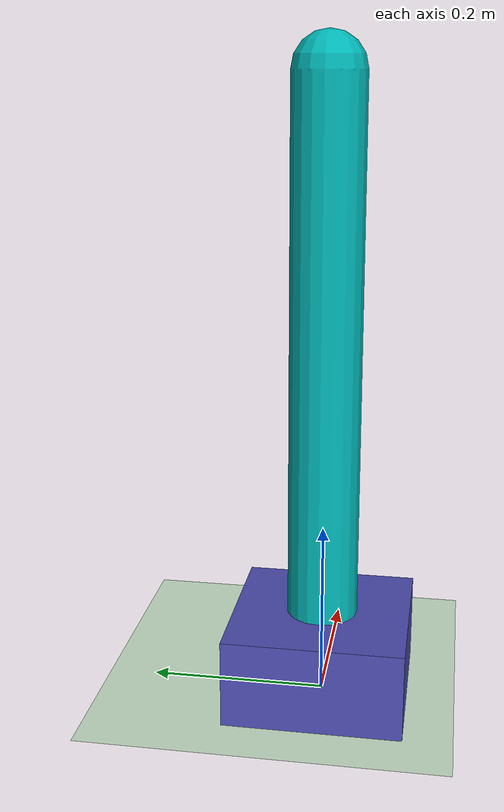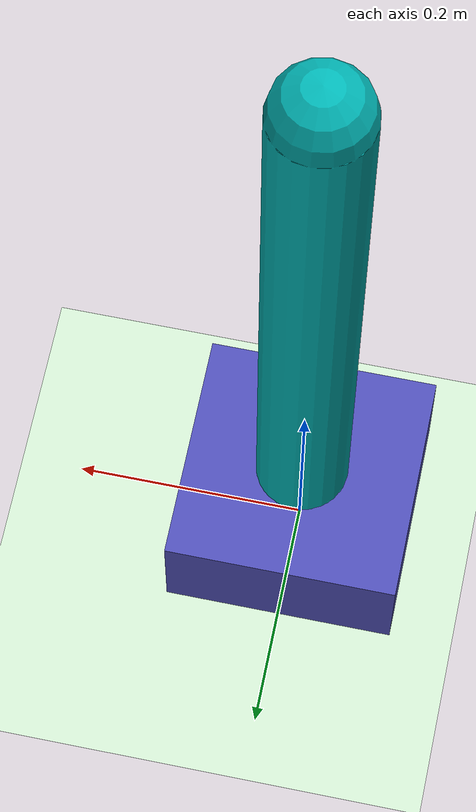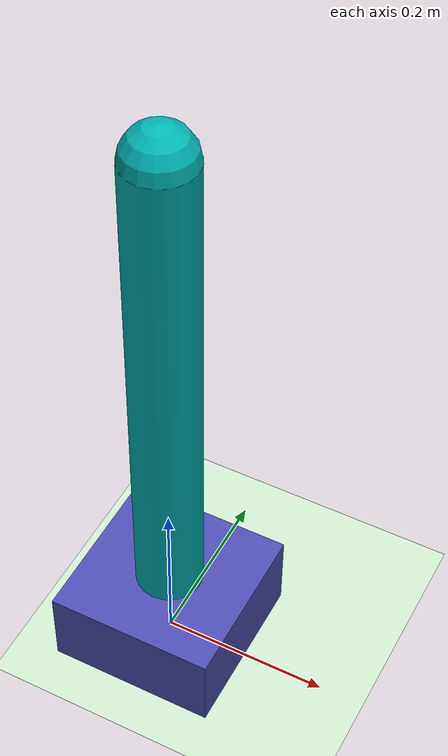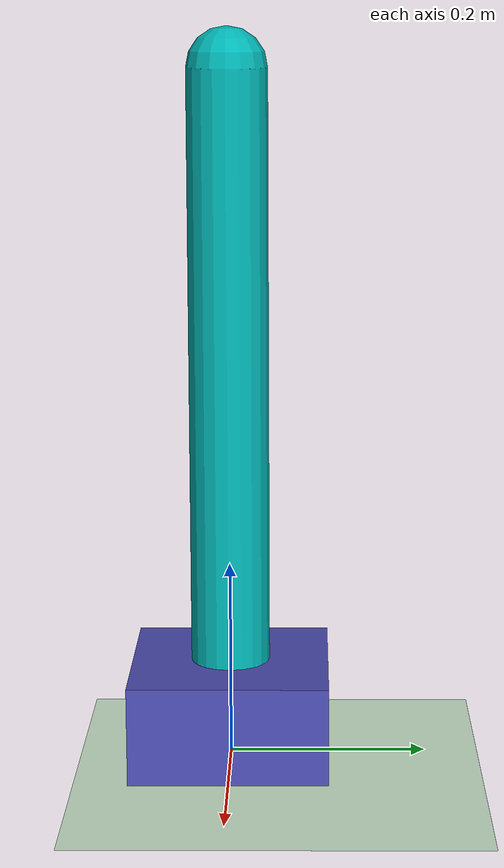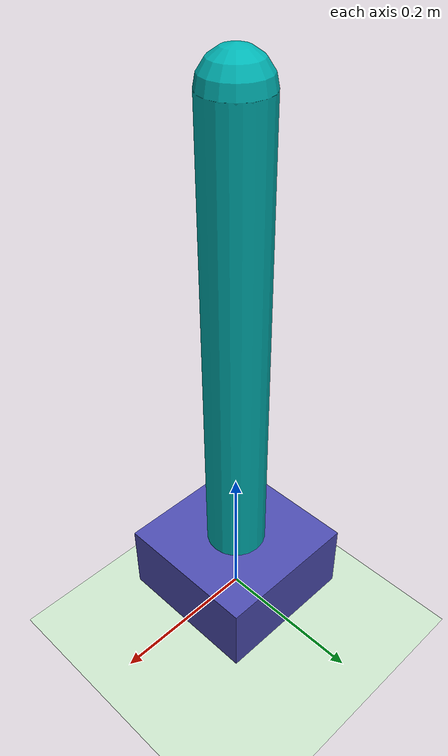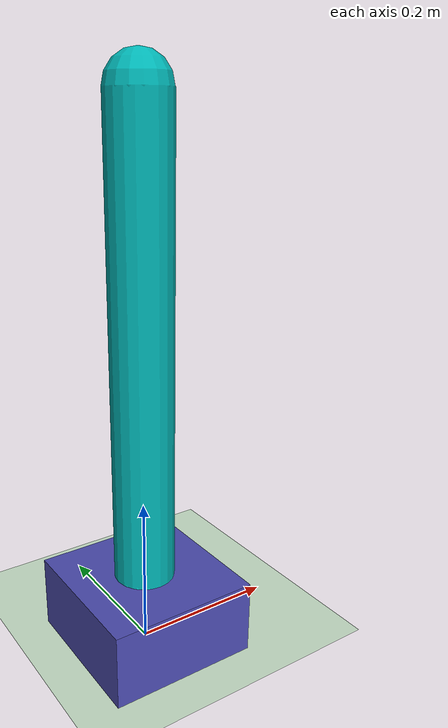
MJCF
<mujoco model="inverted_pendulum">
  <option gravity="0 0 -9.81" timestep="0.01"/>
  <compiler inertiafromgeom="true"/>

  <worldbody>
    <geom name="ground" type="plane" size="10 10 0.1" pos="0 0 0" rgba="0.8 0.9 0.8 1"/>
    <body name="cart" pos="0 0 0.05">
      <geom name="cart_geom" type="box" size="0.1 0.1 0.05" rgba="0.3 0.3 0.7 1"/>
      <body name="pole" pos="0 0 0.05">
        <joint name="hinge" type="hinge" axis="0 1 0"/>
        <geom name="pole_geom" type="capsule" fromto="0 0 0 0 0 0.6" size="0.04" rgba="0 0.7 0.7 1"/>
      </body>
    </body>
  </worldbody>

</mujoco>
